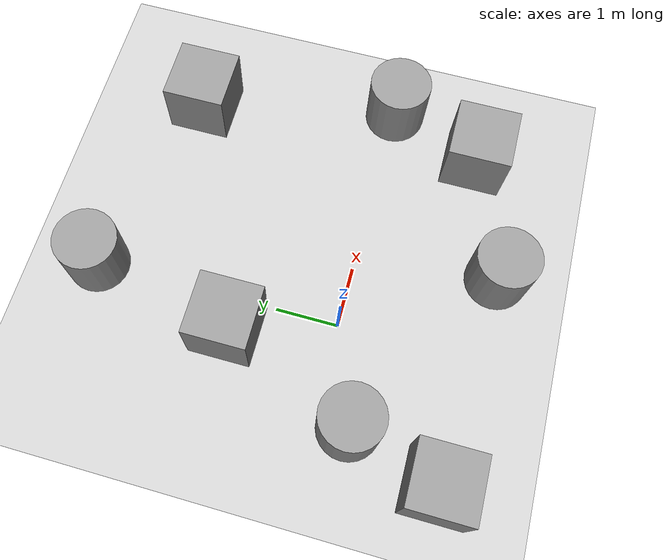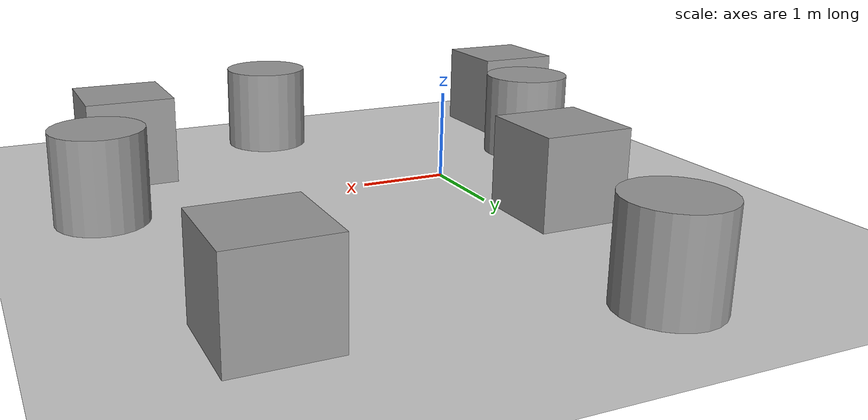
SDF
<sdf version="1.4">
 <world name="default">
  <light name="sun" type="directional">
   <pose>0 0 10 0 -0 0</pose>
   <diffuse>0.8 0.8 0.8 1</diffuse>
   <specular>0.2 0.2 0.2 1</specular>
   <attenuation>
    <range>1000</range>
    <constant>0.9</constant>
    <linear>0.01</linear>
    <quadratic>0.001</quadratic>
   </attenuation>
   <direction>0.5 0.1 -0.9</direction>
  </light>
  <model name="ground_plane">
   <static>1</static>
   <link name="link">
    <collision name="collision">
     <geometry><plane><normal>0 0 1</normal><size>100 100</size></plane></geometry>
     <surface><friction><ode><mu>100</mu><mu2>50</mu2></ode></friction></surface>
    </collision>
    <visual name="visual">
     <cast_shadows>0</cast_shadows>
     <geometry><plane><normal>0 0 1</normal><size>100 100</size></plane></geometry>
     <material>
      <script><uri>file://media/materials/scripts/gazebo.material</uri><name>Gazebo/Grey</name></script>
     </material>
    </visual>
    <velocity_decay><linear>0</linear><angular>0</angular></velocity_decay>
   </link>
  </model>
  <physics type="ode">
   <max_step_size>0.01</max_step_size>
   <real_time_factor>1</real_time_factor>
   <real_time_update_rate>100</real_time_update_rate>
   <gravity>0 0 -9.8</gravity>
  </physics>
  <scene><ambient>0.4 0.4 0.4 1</ambient><background>0.7 0.7 0.7 1</background><shadows>1</shadows></scene>
  <model name="unit_box_1">
   <pose>3.45128 -1.50492 0.5 0 -0 0</pose>
   <link name="link">
    <inertial>
     <mass>1</mass>
     <inertia><ixx>1</ixx><ixy>0</ixy><ixz>0</ixz><iyy>1</iyy><iyz>0</iyz><izz>1</izz></inertia>
    </inertial>
    <collision name="collision"><geometry><box><size>1 1 1</size></box></geometry></collision>
    <visual name="visual">
     <geometry><box><size>1 1 1</size></box></geometry>
     <material>
      <script><uri>file://media/materials/scripts/gazebo.material</uri><name>Gazebo/Grey</name></script>
     </material>
    </visual>
    <velocity_decay><linear>0</linear><angular>0</angular></velocity_decay>
   </link>
   <static>0</static>
  </model>
  <model name="unit_box_2">
   <pose>-2 -2 0.5 0 -0 0</pose>
   <link name="link">
    <inertial>
     <mass>1</mass>
     <inertia><ixx>1</ixx><ixy>0</ixy><ixz>0</ixz><iyy>1</iyy><iyz>0</iyz><izz>1</izz></inertia>
    </inertial>
    <collision name="collision"><geometry><box><size>1 1 1</size></box></geometry></collision>
    <visual name="visual">
     <geometry><box><size>1 1 1</size></box></geometry>
     <material>
      <script><uri>file://media/materials/scripts/gazebo.material</uri><name>Gazebo/Grey</name></script>
     </material>
    </visual>
    <velocity_decay><linear>0</linear><angular>0</angular></velocity_decay>
   </link>
   <static>0</static>
  </model>
  <model name="unit_box_3">
   <pose>-0.507011 1.65376 0.5 0 -0 0</pose>
   <link name="link">
    <inertial>
     <mass>1</mass>
     <inertia><ixx>1</ixx><ixy>0</ixy><ixz>0</ixz><iyy>1</iyy><iyz>0</iyz><izz>1</izz></inertia>
    </inertial>
    <collision name="collision"><geometry><box><size>1 1 1</size></box></geometry></collision>
    <visual name="visual">
     <geometry><box><size>1 1 1</size></box></geometry>
     <material>
      <script><uri>file://media/materials/scripts/gazebo.material</uri><name>Gazebo/Grey</name></script>
     </material>
    </visual>
    <velocity_decay><linear>0</linear><angular>0</angular></velocity_decay>
   </link>
   <static>0</static>
  </model>
  <model name="unit_box_4">
   <pose>3.30014 3.22538 0.5 0 -0 0</pose>
   <link name="link">
    <inertial>
     <mass>1</mass>
     <inertia><ixx>1</ixx><ixy>0</ixy><ixz>0</ixz><iyy>1</iyy><iyz>0</iyz><izz>1</izz></inertia>
    </inertial>
    <collision name="collision"><geometry><box><size>1 1 1</size></box></geometry></collision>
    <visual name="visual">
     <geometry><box><size>1 1 1</size></box></geometry>
     <material>
      <script><uri>file://media/materials/scripts/gazebo.material</uri><name>Gazebo/Grey</name></script>
     </material>
    </visual>
    <velocity_decay><linear>0</linear><angular>0</angular></velocity_decay>
   </link>
   <static>0</static>
  </model>
  <model name="unit_cylinder_1">
   <pose>4 -0 0.49912 -0 -0 -0</pose>
   <link name="link">
    <inertial>
     <mass>1</mass>
     <inertia><ixx>1</ixx><ixy>0</ixy><ixz>0</ixz><iyy>1</iyy><iyz>0</iyz><izz>1</izz></inertia>
    </inertial>
    <collision name="collision">
     <geometry><cylinder><radius>0.5</radius><length>1</length></cylinder></geometry>
    </collision>
    <visual name="visual">
     <geometry><cylinder><radius>0.5</radius><length>1</length></cylinder></geometry>
     <material>
      <script><uri>file://media/materials/scripts/gazebo.material</uri><name>Gazebo/Grey</name></script>
     </material>
    </visual>
    <velocity_decay><linear>0</linear><angular>0</angular></velocity_decay>
   </link>
   <static>0</static>
  </model>
  <model name="unit_cylinder_2">
   <pose>0.00034 4.00306 0.49912 -0 -0 -0.002168</pose>
   <link name="link">
    <inertial>
     <mass>1</mass>
     <inertia><ixx>1</ixx><ixy>0</ixy><ixz>0</ixz><iyy>1</iyy><iyz>0</iyz><izz>1</izz></inertia>
    </inertial>
    <collision name="collision">
     <geometry><cylinder><radius>0.5</radius><length>1</length></cylinder></geometry>
    </collision>
    <visual name="visual">
     <geometry><cylinder><radius>0.5</radius><length>1</length></cylinder></geometry>
     <material>
      <script><uri>file://media/materials/scripts/gazebo.material</uri><name>Gazebo/Grey</name></script>
     </material>
    </visual>
    <velocity_decay><linear>0</linear><angular>0</angular></velocity_decay>
   </link>
   <static>0</static>
  </model>
  <model name="unit_cylinder_3">
   <pose>-1.50746 -0.553057 0.49912 -0 -0 -1e-06</pose>
   <link name="link">
    <inertial>
     <mass>1</mass>
     <inertia><ixx>1</ixx><ixy>0</ixy><ixz>0</ixz><iyy>1</iyy><iyz>0</iyz><izz>1</izz></inertia>
    </inertial>
    <collision name="collision">
     <geometry><cylinder><radius>0.5</radius><length>1</length></cylinder></geometry>
    </collision>
    <visual name="visual">
     <geometry><cylinder><radius>0.5</radius><length>1</length></cylinder></geometry>
     <material>
      <script><uri>file://media/materials/scripts/gazebo.material</uri><name>Gazebo/Grey</name></script>
     </material>
    </visual>
    <velocity_decay><linear>0</linear><angular>0</angular></velocity_decay>
   </link>
   <static>0</static>
  </model>
  <model name="unit_cylinder_4">
   <pose>1.43029 -2.25382 0.49912 -0 -0 -1e-06</pose>
   <link name="link">
    <inertial>
     <mass>1</mass>
     <inertia><ixx>1</ixx><ixy>0</ixy><ixz>0</ixz><iyy>1</iyy><iyz>0</iyz><izz>1</izz></inertia>
    </inertial>
    <collision name="collision">
     <geometry><cylinder><radius>0.5</radius><length>1</length></cylinder></geometry>
    </collision>
    <visual name="visual">
     <geometry><cylinder><radius>0.5</radius><length>1</length></cylinder></geometry>
     <material>
      <script><uri>file://media/materials/scripts/gazebo.material</uri><name>Gazebo/Grey</name></script>
     </material>
    </visual>
    <velocity_decay><linear>0</linear><angular>0</angular></velocity_decay>
   </link>
   <static>0</static>
  </model>
  <spherical_coordinates>
   <surface_model>EARTH_WGS84</surface_model>
   <latitude_deg>0</latitude_deg>
   <longitude_deg>0</longitude_deg>
   <elevation>0</elevation>
   <heading_deg>0</heading_deg>
  </spherical_coordinates>
 </world>
</sdf>
